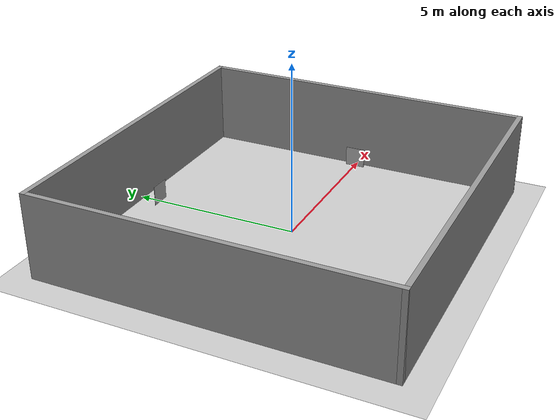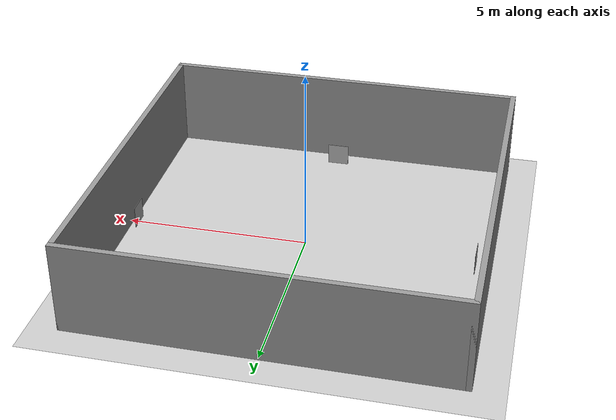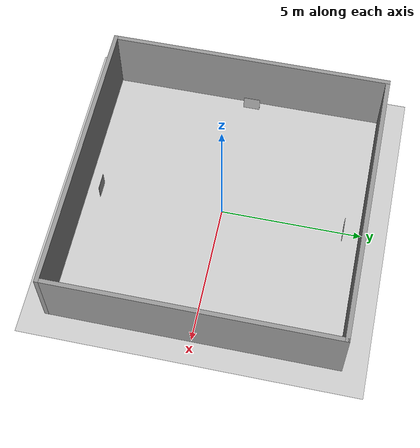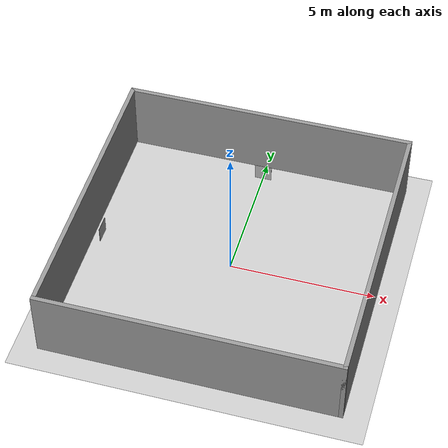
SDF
<sdf version="1.7">
 <world name="default">
  <light name="sun" type="directional">
   <pose>0 0 10 0 -0 0</pose>
   <diffuse>0.8 0.8 0.8 1</diffuse>
   <specular>0.2 0.2 0.2 1</specular>
   <attenuation>
    <range>1000</range>
    <constant>0.9</constant>
    <linear>0.01</linear>
    <quadratic>0.001</quadratic>
   </attenuation>
   <direction>-0.5 0.1 -0.9</direction>
   <spot><inner_angle>0</inner_angle><outer_angle>0</outer_angle><falloff>0</falloff></spot>
  </light>
  <model name="ground_plane">
   <static>1</static>
   <link name="link">
    <collision name="collision">
     <geometry><plane><normal>0 0 1</normal><size>100 100</size></plane></geometry>
     <surface><friction><ode><mu>100</mu><mu2>50</mu2></ode></friction></surface>
    </collision>
    <visual name="visual">
     <cast_shadows>0</cast_shadows>
     <geometry><plane><normal>0 0 1</normal><size>100 100</size></plane></geometry>
     <material>
      <script><uri>file://media/materials/scripts/gazebo.material</uri><name>Gazebo/Grey</name></script>
     </material>
    </visual>
   </link>
  </model>
  <gravity>0 0 -9.8</gravity>
  <magnetic_field>6e-06 2.3e-05 -4.2e-05</magnetic_field>
  <atmosphere type="adiabatic"/>
  <physics type="ode">
   <max_step_size>0.001</max_step_size>
   <real_time_factor>1</real_time_factor>
   <real_time_update_rate>1000</real_time_update_rate>
  </physics>
  <scene><ambient>0.4 0.4 0.4 1</ambient><background>0.7 0.7 0.7 1</background><shadows>1</shadows></scene>
  <audio><device>default</device></audio>
  <spherical_coordinates>
   <surface_model>EARTH_WGS84</surface_model>
   <latitude_deg>0</latitude_deg>
   <longitude_deg>0</longitude_deg>
   <elevation>0</elevation>
   <heading_deg>0</heading_deg>
  </spherical_coordinates>
  <model name="world5">
   <link name="Wall_11">
    <collision name="Wall_11_Collision">
     <geometry><box><size>10.15 0.15 2.5</size></box></geometry>
     <pose>0 0 1.25 0 -0 0</pose>
    </collision>
    <visual name="Wall_11_Visual">
     <pose>0 0 1.25 0 -0 0</pose>
     <geometry><box><size>10.15 0.15 2.5</size></box></geometry>
     <material>
      <script><uri>file://media/materials/scripts/gazebo.material</uri><name>Gazebo/Grey</name></script>
      <ambient>1 1 1 1</ambient>
     </material>
     <meta><layer>0</layer></meta>
    </visual>
    <pose>0 5 0 0 -0 0</pose>
   </link>
   <link name="Wall_4">
    <collision name="Wall_4_Collision">
     <geometry><box><size>10.15 0.15 2.5</size></box></geometry>
     <pose>0 0 1.25 0 -0 0</pose>
    </collision>
    <visual name="Wall_4_Visual">
     <pose>0 0 1.25 0 -0 0</pose>
     <geometry><box><size>10.15 0.15 2.5</size></box></geometry>
     <material>
      <script><uri>file://media/materials/scripts/gazebo.material</uri><name>Gazebo/Grey</name></script>
      <ambient>1 1 1 1</ambient>
     </material>
     <meta><layer>0</layer></meta>
    </visual>
    <pose>-5 0 0 0 -0 1.5708</pose>
   </link>
   <link name="Wall_7">
    <collision name="Wall_7_Collision">
     <geometry><box><size>10.15 0.15 2.5</size></box></geometry>
     <pose>0 0 1.25 0 -0 0</pose>
    </collision>
    <visual name="Wall_7_Visual">
     <pose>0 0 1.25 0 -0 0</pose>
     <geometry><box><size>10.15 0.15 2.5</size></box></geometry>
     <material>
      <script><uri>file://media/materials/scripts/gazebo.material</uri><name>Gazebo/Grey</name></script>
      <ambient>1 1 1 1</ambient>
     </material>
     <meta><layer>0</layer></meta>
    </visual>
    <pose>0 -5 0 0 -0 0</pose>
   </link>
   <link name="Wall_9">
    <collision name="Wall_9_Collision">
     <geometry><box><size>10.15 0.15 2.5</size></box></geometry>
     <pose>0 0 1.25 0 -0 0</pose>
    </collision>
    <visual name="Wall_9_Visual">
     <pose>0 0 1.25 0 -0 0</pose>
     <geometry><box><size>10.15 0.15 2.5</size></box></geometry>
     <material>
      <script><uri>file://media/materials/scripts/gazebo.material</uri><name>Gazebo/Grey</name></script>
      <ambient>1 1 1 1</ambient>
     </material>
     <meta><layer>0</layer></meta>
    </visual>
    <pose>5 0 0 0 -0 -1.5708</pose>
   </link>
   <static>1</static>
  </model>
  <model name="Marker0">
   <static>1</static>
   <link name="link">
    <visual name="visual">
     <geometry><mesh><uri>model://marker0/meshes/Marker0.dae</uri><scale>1.2 1.2 1.2</scale></mesh></geometry>
    </visual>
   </link>
   <pose>4.75599 0.010622 0 0 -0 0</pose>
  </model>
  <model name="Marker2">
   <static>1</static>
   <link name="link">
    <visual name="visual">
     <geometry><mesh><uri>model://marker2/meshes/Marker2.dae</uri><scale>1.2 1.2 1.2</scale></mesh></geometry>
    </visual>
   </link>
   <pose>-4.63682 0.180654 0 0 -0 0</pose>
  </model>
  <model name="Marker0_0">
   <static>1</static>
   <link name="link">
    <visual name="visual">
     <geometry><mesh><uri>model://marker0/meshes/Marker0.dae</uri><scale>1.2 1.2 1.2</scale></mesh></geometry>
    </visual>
   </link>
   <pose>0.000457 4.34966 0 0 -0 1.58107</pose>
  </model>
  <model name="Marker2_0">
   <static>1</static>
   <link name="link">
    <visual name="visual">
     <geometry><mesh><uri>model://marker2/meshes/Marker2.dae</uri><scale>1.2 1.2 1.2</scale></mesh></geometry>
    </visual>
   </link>
   <pose>-0.011943 -4.42208 0 0 -0 1.57519</pose>
  </model>
 </world>
</sdf>
